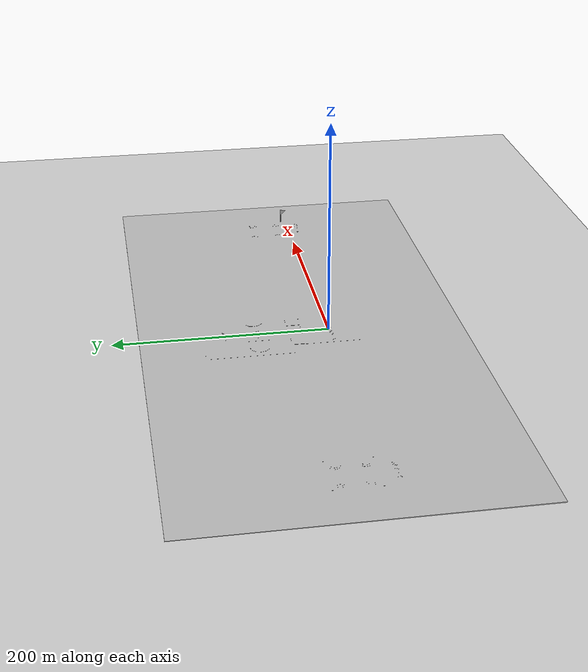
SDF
<sdf version="1.7">
 <world name="default">
  <scene>
   <grid>0</grid>
   <origin_visual>0</origin_visual>
   <ambient>0.592 0.624 0.635 1</ambient>
   <sky><clouds><speed>12</speed></clouds></sky>
   <background>0.35 0.35 0.35 1</background>
   <shadows>1</shadows>
  </scene>
  <physics name="default_physics" default="0" type="ode">
   <gravity>0 0 -9.8066</gravity>
   <ode>
    <solver>
     <type>quick</type>
     <iters>10</iters>
     <sor>1.3</sor>
     <use_dynamic_moi_rescaling>0</use_dynamic_moi_rescaling>
    </solver>
    <constraints>
     <cfm>0</cfm>
     <erp>0.2</erp>
     <contact_max_correcting_vel>100</contact_max_correcting_vel>
     <contact_surface_layer>0.001</contact_surface_layer>
    </constraints>
   </ode>
   <max_step_size>0.004</max_step_size>
   <real_time_factor>1</real_time_factor>
   <real_time_update_rate>250</real_time_update_rate>
   <magnetic_field>6.0e-6 2.3e-5 -4.2e-5</magnetic_field>
  </physics>
  <light name="sun" type="directional">
   <pose>0 0 10 0 -0 0</pose>
   <diffuse>0.8 0.8 0.8 1</diffuse>
   <specular>0.2 0.2 0.2 1</specular>
   <attenuation>
    <range>1000</range>
    <constant>0.9</constant>
    <linear>0.01</linear>
    <quadratic>0.001</quadratic>
   </attenuation>
   <direction>-0.5 0.1 -0.9</direction>
   <spot><inner_angle>0</inner_angle><outer_angle>0</outer_angle><falloff>0</falloff></spot>
  </light>
  <model name="ground_plane">
   <static>1</static>
   <link name="link">
    <collision name="collision">
     <geometry><plane><normal>0 0 1</normal><size>100 100</size></plane></geometry>
     <surface>
      <contact><collide_bitmask>65535</collide_bitmask></contact>
      <friction><ode><mu>100</mu><mu2>50</mu2></ode></friction>
     </surface>
    </collision>
    <visual name="visual">
     <cast_shadows>0</cast_shadows>
     <geometry><plane><normal>0 0 1</normal><size>100 100</size></plane></geometry>
     <material>
      <script><uri>file://media/materials/scripts/gazebo.material</uri><name>Gazebo/Grey</name></script>
     </material>
    </visual>
   </link>
  </model>
  <gravity>0 0 -9.8</gravity>
  <magnetic_field>6e-06 2.3e-05 -4.2e-05</magnetic_field>
  <atmosphere type="adiabatic"/>
  <physics type="ode">
   <max_step_size>0.001</max_step_size>
   <real_time_factor>1</real_time_factor>
   <real_time_update_rate>1000</real_time_update_rate>
  </physics>
  <scene><ambient>0.4 0.4 0.4 1</ambient><background>0.7 0.7 0.7 1</background><shadows>1</shadows></scene>
  <spherical_coordinates>
   <surface_model>EARTH_WGS84</surface_model>
   <latitude_deg>0</latitude_deg>
   <longitude_deg>0</longitude_deg>
   <elevation>0</elevation>
   <heading_deg>0</heading_deg>
  </spherical_coordinates>
  <model name="fixedwing">
   <link name="base_link">
    <inertial>
     <pose>0.027602 25.1907 -0.595071 0 -0 0</pose>
     <mass>1.81248e+08</mass>
     <inertia>
      <ixx>1.35264e+12</ixx>
      <ixy>-443617</ixy>
      <ixz>21585.7</ixz>
      <iyy>5.40514e+12</iyy>
      <iyz>-1.99747e+07</iyz>
      <izz>6.75776e+12</izz>
     </inertia>
    </inertial>
    <collision name="base_link_collision">
     <geometry>
      <mesh><scale>1 1 1</scale><uri>/home/jtj/CUADC/src/fixedwing/meshes/base_link.STL</uri></mesh>
     </geometry>
    </collision>
    <visual name="base_link_visual">
     <geometry>
      <mesh><scale>1 1 1</scale><uri>/home/jtj/CUADC/src/fixedwing/meshes/base_link.STL</uri></mesh>
     </geometry>
    </visual>
   </link>
   <pose>1e-06 0.000131 0.084187 -0.001267 5e-06 0</pose>
  </model>
 </world>
</sdf>
